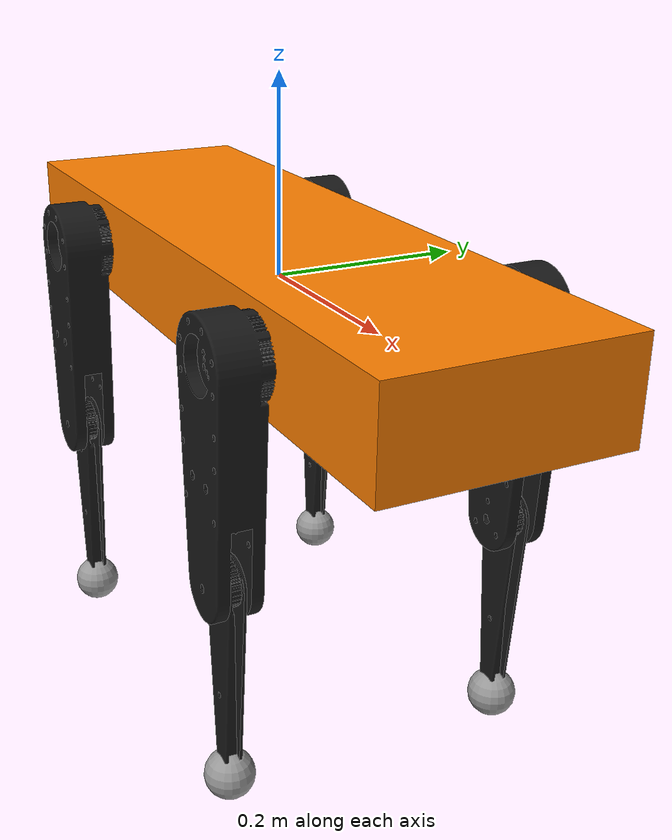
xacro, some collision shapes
<?xml version="1.0"?>
<robot name="quattro" xmlns:xacro="http://www.ros.org/wiki/xacro">

	<!-- QUATTRO Parameters -->
	<xacro:property name="shoulder_length" value="0.0905"/>
	<xacro:property name="elbow_length" value="0.210"/>
	<xacro:property name="wrist_length" value="0.210"/>
	<xacro:property name="hip_x" value="0.2025"/>
	<xacro:property name="hip_y" value="0.06"/>

	<!-- Collision dimensions -->
	<xacro:property name="body_length" value="0.81"/>
	<xacro:property name="body_width" value="0.24"/>
	<xacro:property name="body_height" value="0.10"/>

	<xacro:property name="hip_box_x" value="0.05"/>
	<xacro:property name="hip_box_y" value="0.05"/>
	<xacro:property name="hip_box_z" value="0.05"/>

	<xacro:property name="upper_radius" value="0.020"/>
	<xacro:property name="lower_radius" value="0.018"/>
	<xacro:property name="foot_radius" value="0.025"/>

	<material name="orange">
		<color rgba="1.0 0.5 0.0 1.0"/>
	</material>

	<material name="black">
		<color rgba="0.1 0.1 0.1 1.0"/>
	</material>

	<material name="grey">
		<color rgba="0.6 0.6 0.6 1.0"/>
	</material>

	<!-- Root -->
	<link name="base_link"/>

	<link name="base_inertia">
		<visual>
			<origin xyz="0 0 0" rpy="0 0 0"/>
			<geometry>
				<mesh filename="package://quattro_description/stl/body_frame.stl" scale="1 1 1"/>
			</geometry>
			<material name="orange"/>
		</visual>

		<collision>
			<origin xyz="0 0 0" rpy="0 0 0"/>
			<geometry>
				<box size="${body_length} ${body_width} ${body_height}"/>
			</geometry>
		</collision>

		<inertial>
			<origin xyz="0.001210 -0.000887 -0.007933" rpy="0 0 0"/>
			<mass value="3.092"/>
			<inertia
				ixx="0.012720949" ixy="0.000098785" ixz="-0.000130401"
				iyy="0.034500612" iyz="0.000097314"
				izz="0.043632308"/>
		</inertial>
	</link>

	<joint name="base_base" type="fixed">
		<origin xyz="0 0 0" rpy="0 0 0"/>
		<parent link="base_link"/>
		<child link="base_inertia"/>
	</joint>

	<!-- Leg macro -->
	<xacro:macro name="quattro_leg" params="
		prefix
		hip_origin_x
		hip_origin_y
		shoulder_sign
		hip_mesh
		upper_mesh
		lower_mesh
		hip_mass
		hip_com_x
		hip_com_y
		hip_com_z
		hip_ixx
		hip_ixy
		hip_ixz
		hip_iyy
		hip_iyz
		hip_izz
		upper_mass
		upper_com_x
		upper_com_y
		upper_com_z
		upper_ixx
		upper_ixy
		upper_ixz
		upper_iyy
		upper_iyz
		upper_izz
		lower_mass
		lower_com_x
		lower_com_y
		lower_com_z
		lower_ixx
		lower_ixy
		lower_ixz
		lower_iyy
		lower_iyz
		lower_izz">

		<link name="${prefix}_hip">
			<visual>
				<origin xyz="0 0 0" rpy="0 0 0"/>
				<geometry>
					<mesh filename="package://quattro_description/stl/${hip_mesh}" scale="1 1 1"/>
				</geometry>
				<material name="black"/>
			</visual>

			<collision>
				<origin xyz="0 0 0" rpy="0 0 0"/>
				<geometry>
					<box size="${hip_box_x} ${hip_box_y} ${hip_box_z}"/>
				</geometry>
			</collision>

			<inertial>
				<origin xyz="${hip_com_x} ${hip_com_y} ${hip_com_z}" rpy="0 0 0"/>
				<mass value="${hip_mass}"/>
				<inertia
					ixx="${hip_ixx}" ixy="${hip_ixy}" ixz="${hip_ixz}"
					iyy="${hip_iyy}" iyz="${hip_iyz}"
					izz="${hip_izz}"/>
			</inertial>
		</link>

		<joint name="motor_${prefix}_hip" type="revolute">
			<axis xyz="1 0 0"/>
			<origin xyz="${hip_origin_x} ${hip_origin_y} 0" rpy="0 0 0"/>
			<parent link="base_link"/>
			<child link="${prefix}_hip"/>
			<limit effort="40.0" lower="-1.04" upper="1.04" velocity="4.0"/>
			<dynamics damping="0.0" friction="0.0"/>
		</joint>

		<link name="${prefix}_upper_leg">
			<visual>
				<origin xyz="0 0 0" rpy="0 0 0"/>
				<geometry>
					<mesh filename="package://quattro_description/stl/${upper_mesh}" scale="1 1 1"/>
				</geometry>
				<material name="black"/>
			</visual>

			<collision>
				<origin xyz="0 0 -${elbow_length / 2.0}" rpy="0 0 0"/>
				<geometry>
					<cylinder radius="${upper_radius}" length="${elbow_length}"/>
				</geometry>
			</collision>

			<inertial>
				<origin xyz="${upper_com_x} ${upper_com_y} ${upper_com_z}" rpy="0 0 0"/>
				<mass value="${upper_mass}"/>
				<inertia
					ixx="${upper_ixx}" ixy="${upper_ixy}" ixz="${upper_ixz}"
					iyy="${upper_iyy}" iyz="${upper_iyz}"
					izz="${upper_izz}"/>
			</inertial>
		</link>

		<joint name="motor_${prefix}_upper_leg" type="revolute">
			<axis xyz="0 1 0"/>
			<origin xyz="0 ${shoulder_sign * shoulder_length} 0" rpy="0 0 0"/>
			<parent link="${prefix}_hip"/>
			<child link="${prefix}_upper_leg"/>
			<limit effort="40.0" lower="-1.57079632679" upper="2.59" velocity="4.0"/>
			<dynamics damping="0.0" friction="0.0"/>
		</joint>

		<link name="${prefix}_lower_leg">
			<visual>
				<origin xyz="0 0 0" rpy="0 0 0"/>
				<geometry>
					<mesh filename="package://quattro_description/stl/${lower_mesh}" scale="1 1 1"/>
				</geometry>
				<material name="black"/>
			</visual>

			<collision>
				<origin xyz="0 0 -${wrist_length / 2.0}" rpy="0 0 0"/>
				<geometry>
					<cylinder radius="${lower_radius}" length="${wrist_length}"/>
				</geometry>
			</collision>

			<inertial>
				<origin xyz="${lower_com_x} ${lower_com_y} ${lower_com_z}" rpy="0 0 0"/>
				<mass value="${lower_mass}"/>
				<inertia
					ixx="${lower_ixx}" ixy="${lower_ixy}" ixz="${lower_ixz}"
					iyy="${lower_iyy}" iyz="${lower_iyz}"
					izz="${lower_izz}"/>
			</inertial>
		</link>

		<joint name="motor_${prefix}_lower_leg" type="revolute">
			<axis xyz="0 1 0"/>
			<origin xyz="0 0 -${elbow_length}" rpy="0 0 0"/>
			<parent link="${prefix}_upper_leg"/>
			<child link="${prefix}_lower_leg"/>
			<limit effort="40.0" lower="-2.9" upper="1.57079632679" velocity="4.0"/>
			<dynamics damping="0.0" friction="0.0"/>
		</joint>

		<link name="${prefix}_foot">
			<visual>
				<origin xyz="0 0 0" rpy="0 0 0"/>
				<geometry>
					<sphere radius="${foot_radius}"/>
				</geometry>
				<material name="grey"/>
			</visual>

			<collision>
				<origin xyz="0 0 0" rpy="0 0 0"/>
				<geometry>
					<sphere radius="${foot_radius}"/>
				</geometry>
			</collision>

			<inertial>
				<origin xyz="0 0 0" rpy="0 0 0"/>
				<mass value="0.05"/>
				<inertia
					ixx="0.00005" ixy="0.0" ixz="0.0"
					iyy="0.00005" iyz="0.0"
					izz="0.00005"/>
			</inertial>
		</link>

		<joint name="${prefix}_leg_foot" type="fixed">
			<origin xyz="0 0 -${wrist_length}" rpy="0 0 0"/>
			<parent link="${prefix}_lower_leg"/>
			<child link="${prefix}_foot"/>
		</joint>

	</xacro:macro>

	<!-- Front Left -->
	<xacro:quattro_leg
		prefix="front_left"
		hip_origin_x="${hip_x}"
		hip_origin_y="${hip_y}"
		shoulder_sign="1"
		hip_mesh="hip_1.stl"
		upper_mesh="upper_leg_left.stl"
		lower_mesh="lower_leg_left.stl"
		hip_mass="0.421"
		hip_com_x="-0.003000"
		hip_com_y="-0.000913"
		hip_com_z="-0.000423"
		hip_ixx="0.000208442"
		hip_ixy="-0.000000970"
		hip_ixz="0.000003590"
		hip_iyy="0.000347130"
		hip_iyz="-0.000002271"
		hip_izz="0.000242004"
		upper_mass="0.823"
		upper_com_x="0.000110"
		upper_com_y="-0.017289"
		upper_com_z="-0.042003"
		upper_ixx="0.004380506"
		upper_ixy="0.000001190"
		upper_ixz="-0.000003916"
		upper_iyy="0.004394642"
		upper_iyz="0.000544858"
		upper_izz="0.000779349"
		lower_mass="0.170"
		lower_com_x="-0.000176"
		lower_com_y="0.000000"
		lower_com_z="-0.034133"
		lower_ixx="0.000604957"
		lower_ixy="0.000000008"
		lower_ixz="0.000000277"
		lower_iyy="0.000622383"
		lower_iyz="0.000000013"
		lower_izz="0.000025776"/>

	<!-- Front Right -->
	<xacro:quattro_leg
		prefix="front_right"
		hip_origin_x="${hip_x}"
		hip_origin_y="${-hip_y}"
		shoulder_sign="-1"
		hip_mesh="hip_2.stl"
		upper_mesh="upper_leg_right.stl"
		lower_mesh="lower_leg_right.stl"
		hip_mass="0.421"
		hip_com_x="-0.003304"
		hip_com_y="0.000913"
		hip_com_z="-0.000118"
		hip_ixx="0.000208731"
		hip_ixy="0.000001164"
		hip_ixz="0.000003220"
		hip_iyy="0.000346391"
		hip_iyz="0.000002078"
		hip_izz="0.000240976"
		upper_mass="0.823"
		upper_com_x="-0.000110"
		upper_com_y="0.017289"
		upper_com_z="-0.042003"
		upper_ixx="0.004380506"
		upper_ixy="0.000001190"
		upper_ixz="0.000003916"
		upper_iyy="0.004394642"
		upper_iyz="-0.000544858"
		upper_izz="0.000779349"
		lower_mass="0.170"
		lower_com_x="0.000176"
		lower_com_y="0.000000"
		lower_com_z="-0.034133"
		lower_ixx="0.000604957"
		lower_ixy="0.000000008"
		lower_ixz="-0.000000277"
		lower_iyy="0.000622383"
		lower_iyz="-0.000000013"
		lower_izz="0.000025776"/>

	<!-- Back Left -->
	<xacro:quattro_leg
		prefix="back_left"
		hip_origin_x="${-hip_x}"
		hip_origin_y="${hip_y}"
		shoulder_sign="1"
		hip_mesh="hip_3.stl"
		upper_mesh="upper_leg_left.stl"
		lower_mesh="lower_leg_left.stl"
		hip_mass="0.421"
		hip_com_x="0.003304"
		hip_com_y="-0.000713"
		hip_com_z="-0.000118"
		hip_ixx="0.000208731"
		hip_ixy="0.000001164"
		hip_ixz="-0.000003220"
		hip_iyy="0.000346392"
		hip_iyz="-0.000002078"
		hip_izz="0.000240976"
		upper_mass="0.823"
		upper_com_x="0.000110"
		upper_com_y="-0.017289"
		upper_com_z="-0.042003"
		upper_ixx="0.004380506"
		upper_ixy="0.000001190"
		upper_ixz="-0.000003916"
		upper_iyy="0.004394642"
		upper_iyz="0.000544858"
		upper_izz="0.000779349"
		lower_mass="0.170"
		lower_com_x="-0.000176"
		lower_com_y="0.000000"
		lower_com_z="-0.034133"
		lower_ixx="0.000604957"
		lower_ixy="0.000000008"
		lower_ixz="0.000000277"
		lower_iyy="0.000622383"
		lower_iyz="0.000000013"
		lower_izz="0.000025776"/>

	<!-- Back Right -->
	<xacro:quattro_leg
		prefix="back_right"
		hip_origin_x="${-hip_x}"
		hip_origin_y="${-hip_y}"
		shoulder_sign="-1"
		hip_mesh="hip_4.stl"
		upper_mesh="upper_leg_right.stl"
		lower_mesh="lower_leg_right.stl"
		hip_mass="0.421"
		hip_com_x="0.003000"
		hip_com_y="0.001113"
		hip_com_z="-0.000423"
		hip_ixx="0.000208442"
		hip_ixy="-0.000000970"
		hip_ixz="-0.000003590"
		hip_iyy="0.000347130"
		hip_iyz="0.000002271"
		hip_izz="0.000242004"
		upper_mass="0.823"
		upper_com_x="-0.000110"
		upper_com_y="0.017289"
		upper_com_z="-0.042003"
		upper_ixx="0.004380506"
		upper_ixy="0.000001190"
		upper_ixz="0.000003916"
		upper_iyy="0.004394642"
		upper_iyz="-0.000544858"
		upper_izz="0.000779349"
		lower_mass="0.170"
		lower_com_x="0.000176"
		lower_com_y="0.000000"
		lower_com_z="-0.034133"
		lower_ixx="0.000604957"
		lower_ixy="0.000000008"
		lower_ixz="-0.000000277"
		lower_iyy="0.000622383"
		lower_iyz="-0.000000013"
		lower_izz="0.000025776"/>

</robot>
